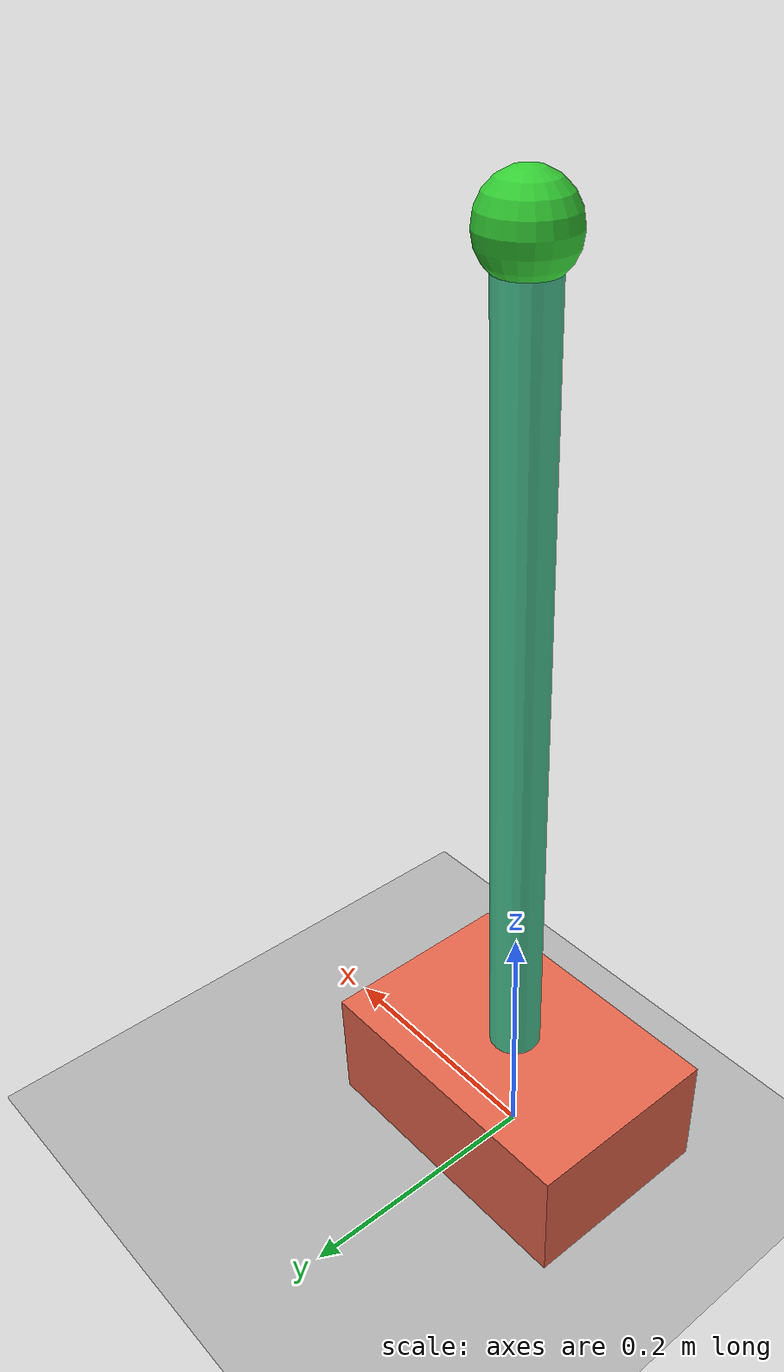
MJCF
<mujoco model="inverted_pendulum">
  <option timestep="0.002" cone="elliptic"/>
  <size nuserdata="1"/>
  <compiler angle="radian"/>

  <asset>
    <!-- 蓝白格子纹理与材质 / Blue checkerboard texture & material -->
    <texture name="grid" type="2d" builtin="checker"
            width="128" height="128"
            rgb1="0.2 0.3 0.7"
            rgb2="0.9 0.9 0.9"
            mark="edge" markrgb="0.2 0.2 0.2"/>
    <material name="grid_mat"
              texture="grid"
              shininess="0.1"
              reflectance="0.2"
              texrepeat="8 8"/>
  </asset>

  <default>
    <geom type="capsule" rgba="0.7 0.7 0.7 1" condim="6" friction="0.8 0.1 0.01"/>
    <joint armature="0.0005" damping="0.01" stiffness="0"/>
  </default>

  <worldbody>

    <!-- Lights -->
    <light name="key_sun"
          directional="true"
          pos="0 0 3"
          dir="0 0 -1"
          diffuse="0.85 0.85 0.85"
          specular="0.2 0.2 0.2"
          castshadow="true"/>
    <light name="fill"
          directional="false"
          pos="-2 -2 1"
          dir="1 1 -0.5"
          diffuse="0.45 0.45 0.45"
          specular="0.0 0.0 0.0"
          castshadow="false"/>
    <light name="rim"
          directional="false"
          pos="2 2 0.6"
          dir="-1 -1 -0.2"
          diffuse="0.25 0.25 0.25"
          specular="0.0 0.0 0.0"
          castshadow="false"/>

    <!-- Ground -->
    <geom name="floor" type="plane" size="5 5 0.1" material="grid_mat"/>

    <!-- Cart on a slider -->
    <body name="cart" pos="0 0 0.05">
      <joint name="slide" type="slide" axis="1 0 0" limited="true" range="-2.4 2.4" damping="2"/>
      <geom name="cart_geom" type="box" size="0.12 0.08 0.05" mass="0.5" rgba="0.9 0.4 0.3 1"/>

      <!-- Pendulum pole: a massless rod with point mass on top (via small sphere) -->
      <body name="pole" pos="0 0 0.05">
        <joint name="hinge" type="hinge" axis="0 1 0" limited="true" range="-3.14 3.14" damping="0.001"/>
        <!-- Slim pole (mostly visual) -->
        <geom name="pole_geom" type="capsule" fromto="0 0 0 0 0 0.6" size="0.02" rgba="0.3 0.8 0.6 1" mass="0.02"/>
        <!-- Concentrated mass at the tip -->
        <geom name="tip" type="sphere" pos="0 0 0.6" size="0.03" mass="0.2" rgba="0.2 0.8 0.2 1"/>
      </body>
    </body>
  </worldbody>

  <actuator>
    <!-- Motor applying force to slider (cart) -->
    <motor name="cart_force" joint="slide" gear="1.0" ctrllimited="true" ctrlrange="-20 20"/>
  </actuator>

  <sensor>
    <jointpos name="hinge_pos" joint="hinge"/>
    <jointvel name="hinge_vel" joint="hinge"/>
    <jointpos name="slide_pos" joint="slide"/>
    <jointvel name="slide_vel" joint="slide"/>
  </sensor>
</mujoco>
